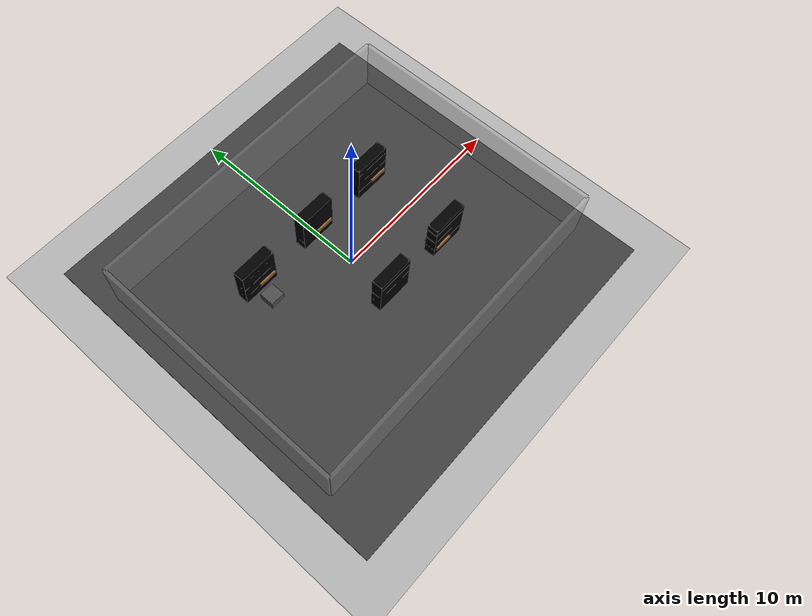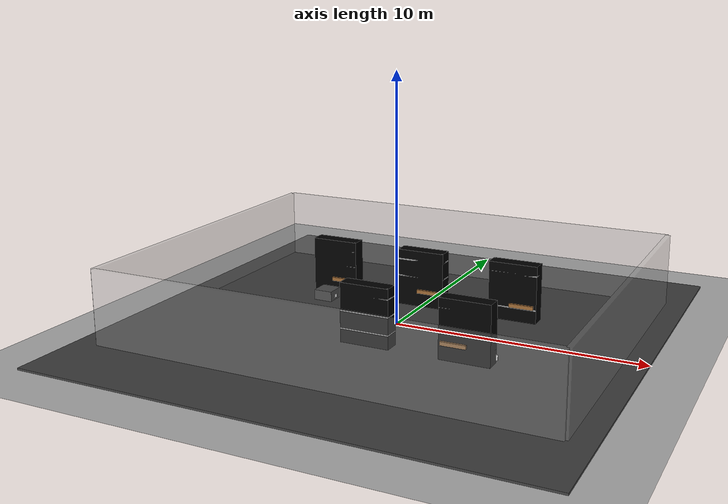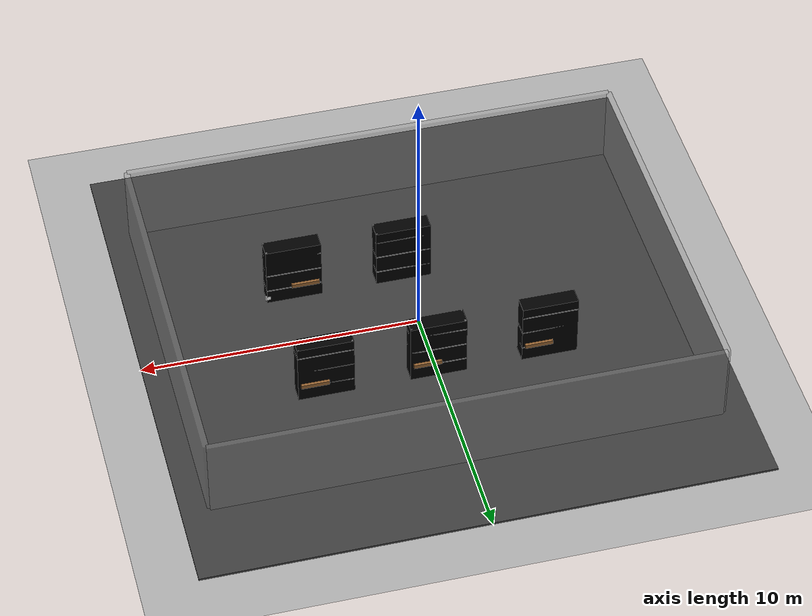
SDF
<?xml version="1.0" ?>
<sdf version="1.5">
  <world name="warehouse_world">

    <plugin
      filename="libignition-gazebo-physics-system.so"
      name="ignition::gazebo::systems::Physics">
    </plugin>

    <plugin
      filename="libignition-gazebo-sensors-system.so"
      name="ignition::gazebo::systems::Sensors">
      <render_engine>ogre2</render_engine>
    </plugin>

    <plugin
      filename="libignition-gazebo-scene-broadcaster-system.so"
      name="ignition::gazebo::systems::SceneBroadcaster">
    </plugin>

    <plugin
      filename="libignition-gazebo-user-commands-system.so"
      name="ignition::gazebo::systems::UserCommands">
    </plugin>

    <!-- Global light source -->
    <light name="sun" type="directional">
      <cast_shadows>false</cast_shadows>
      <pose>0 0 10 0 0 0</pose>
      <diffuse>1 1 1 1</diffuse>
      <specular>0.1 0.1 0.1 1</specular>
      <direction>-0.5 0.1 -1</direction>
    </light>

    <light name="soft_sun" type="directional">
      <pose>0 0 10 0 0 0</pose>

      <diffuse>0.9 0.9 0.9 1</diffuse>
      <specular>0.2 0.2 0.2 1</specular>

      <direction>-0.3 -0.2 -1</direction>

      <cast_shadows>false</cast_shadows>
    </light>

    <!-- SCENE (illuminazione globale) -->
    <scene>
      <ambient>0.45 0.45 0.45 1</ambient>
      <background>0.05 0.05 0.05 1</background>
    </scene>

    <model name="ground_plane">
      <static>true</static>
      <link name="link">
        <collision name="collision">
          <geometry>
            <plane>
              <normal>0 0 1</normal>
              <size>1000 1000</size>
            </plane>
          </geometry>
        </collision>
        <visual name="visual">
          <geometry>
            <plane>
              <normal>0 0 1</normal>
              <size>1000 1000</size>
            </plane>
          </geometry>
          <material>
            <ambient>0.7 0.7 0.7 1</ambient>
            <diffuse>0.7 0.7 0.7 1</diffuse>
          </material>
        </visual>
      </link>
    </model>

    <model name="asphalt_plane">
      <static>true</static>

      <link name="link">
        <collision name="collision">
          <geometry>
            <box>
              <size>20 20 0.1</size>
            </box>
          </geometry>
        </collision>

        <visual name="visual">
          <cast_shadows>false</cast_shadows>
          <geometry>
            <box>
              <size>20 20 0.1</size>
            </box>
          </geometry>

          <material>
            <ambient>0.18 0.18 0.18 1</ambient>
            <diffuse>0.25 0.25 0.25 1</diffuse>
            <specular>0.02 0.02 0.02 1</specular>
          </material>
        </visual>
      </link>
    </model>

    <!-- Only one ROS interface plugin is required per world, as any other plugin can connect a Gazebo
         topic to a ROS topic (or vise versa). -->

    <physics name='default_physics' default='0' type='ode'>
      <gravity>0 0 -9.8066</gravity>
      <ode>
        <solver>
          <type>quick</type>
          <iters>10</iters>
          <sor>1.3</sor>
          <use_dynamic_moi_rescaling>0</use_dynamic_moi_rescaling>
        </solver>
        <constraints>
          <cfm>0</cfm>
          <erp>0.2</erp>
          <contact_max_correcting_vel>100</contact_max_correcting_vel>
          <contact_surface_layer>0.001</contact_surface_layer>
        </constraints>
      </ode>
      <max_step_size>0.005</max_step_size>
      <real_time_factor>1</real_time_factor>
      <real_time_update_rate>250</real_time_update_rate>
      <magnetic_field>6e-06 2.3e-05 -4.2e-05</magnetic_field>
    </physics>

    <light name="light_shelf_L1" type="spot">
      <pose>0 2.5 3.8 0 0 0</pose>

      <diffuse>1 1 1 1</diffuse>
      <specular>0.4 0.4 0.4 1</specular>

      <attenuation>
        <range>9</range>
        <constant>0.2</constant>
        <linear>0.01</linear>
        <quadratic>0.002</quadratic>
      </attenuation>

      <spot>
        <inner_angle>1.0</inner_angle>
        <outer_angle>1.6</outer_angle>
        <falloff>0.8</falloff>
      </spot>

      <direction>0 0 -1</direction>
      <cast_shadows>false</cast_shadows>
    </light>

    <light name="light_shelf_L2" type="spot">
      <pose>4 2.5 3.8 0 0 0</pose>

      <diffuse>1 1 1 1</diffuse>
      <specular>0.4 0.4 0.4 1</specular>

      <attenuation>
        <range>9</range>
        <constant>0.2</constant>
        <linear>0.01</linear>
        <quadratic>0.002</quadratic>
      </attenuation>

      <spot>
        <inner_angle>1.0</inner_angle>
        <outer_angle>1.6</outer_angle>
        <falloff>0.8</falloff>
      </spot>

      <direction>0 0 -1</direction>
      <cast_shadows>false</cast_shadows>
    </light>

    <light name="light_shelf_L3" type="spot">
      <pose>-4 2.5 3.8 0 0 0</pose>

      <diffuse>1 1 1 1</diffuse>
      <specular>0.4 0.4 0.4 1</specular>

      <attenuation>
        <range>9</range>
        <constant>0.2</constant>
        <linear>0.01</linear>
        <quadratic>0.002</quadratic>
      </attenuation>

      <spot>
        <inner_angle>1.0</inner_angle>
        <outer_angle>1.6</outer_angle>
        <falloff>0.8</falloff>
      </spot>

      <direction>0 0 -1</direction>
      <cast_shadows>false</cast_shadows>
    </light>

    <light name="light_shelf_R1" type="spot">
      <pose>0 -2.5 3.8 0 0 0</pose>

      <diffuse>1 1 1 1</diffuse>
      <specular>0.4 0.4 0.4 1</specular>

      <attenuation>
        <range>9</range>
        <constant>0.2</constant>
        <linear>0.01</linear>
        <quadratic>0.002</quadratic>
      </attenuation>

      <spot>
        <inner_angle>1.0</inner_angle>
        <outer_angle>1.6</outer_angle>
        <falloff>0.8</falloff>
      </spot>

      <direction>0 0 -1</direction>
      <cast_shadows>false</cast_shadows>
    </light>

    <light name="light_shelf_R2" type="spot">
      <pose>4 -2.5 3.8 0 0 0</pose>

      <diffuse>1 1 1 1</diffuse>
      <specular>0.4 0.4 0.4 1</specular>

      <attenuation>
        <range>9</range>
        <constant>0.2</constant>
        <linear>0.01</linear>
        <quadratic>0.002</quadratic>
      </attenuation>

      <spot>
        <inner_angle>1.0</inner_angle>
        <outer_angle>1.6</outer_angle>
        <falloff>0.8</falloff>
      </spot>

      <direction>0 0 -1</direction>
      <cast_shadows>false</cast_shadows>
    </light>

    <light name="light_shelf_R3" type="spot">
      <pose>-4 -2.5 3.8 0 0 0</pose>

      <diffuse>1 1 1 1</diffuse>
      <specular>0.4 0.4 0.4 1</specular>

      <attenuation>
        <range>9</range>
        <constant>0.2</constant>
        <linear>0.01</linear>
        <quadratic>0.002</quadratic>
      </attenuation>

      <spot>
        <inner_angle>1.0</inner_angle>
        <outer_angle>1.6</outer_angle>
        <falloff>0.8</falloff>
      </spot>

      <direction>0 0 -1</direction>
      <cast_shadows>false</cast_shadows>
    </light>

    <model name="warehouse_shelf_loaded_L1">
      <static>true</static>
      <pose>0 2.5 0 0 0 0</pose>

      <!-- LINK UNICO -->
      <link name="shelf_link">

        <!-- COLLISIONE UNICA (volume pieno) -->
        <collision name="collision">
          <pose>0 0 1.2 0 0 0</pose>
          <geometry>
            <box>
              <size>2.0 0.6 2.4</size>
            </box>
          </geometry>
        </collision>

        <!-- VISUAL ROOT INVISIBILE -->
        <visual name="root_visual">
          <pose>0 0 1.2 0 0 0</pose>
          <geometry>
            <box>
              <size>2.0 0.6 2.4</size>
            </box>
          </geometry>
          <material>
            <ambient>0 0 0 0</ambient>
            <diffuse>0 0 0 0</diffuse>
          </material>
        </visual>

        <!-- GAMBE -->
        <visual name="leg_fl">
          <pose>0.95 0.25 1.2 0 0 0</pose>
          <geometry><box><size>0.05 0.05 2.4</size></box></geometry>
        </visual>

        <visual name="leg_fr">
          <pose>0.95 -0.25 1.2 0 0 0</pose>
          <geometry><box><size>0.05 0.05 2.4</size></box></geometry>
        </visual>

        <visual name="leg_bl">
          <pose>-0.95 0.25 1.2 0 0 0</pose>
          <geometry><box><size>0.05 0.05 2.4</size></box></geometry>
        </visual>

        <visual name="leg_br">
          <pose>-0.95 -0.25 1.2 0 0 0</pose>
          <geometry><box><size>0.05 0.05 2.4</size></box></geometry>
        </visual>

        <!-- RIPIANI -->
        <visual name="shelf_low">
          <pose>0 0 0.6 0 0 0</pose>
          <geometry><box><size>2.0 0.6 0.05</size></box></geometry>
        </visual>

        <visual name="shelf_mid">
          <pose>0 0 1.3 0 0 0</pose>
          <geometry><box><size>2.0 0.6 0.05</size></box></geometry>
        </visual>

        <visual name="shelf_top">
          <pose>0 0 2.0 0 0 0</pose>
          <geometry><box><size>2.0 0.6 0.05</size></box></geometry>
        </visual>

        <!-- PACCO CENTRALE 1 (marrone) -->
        <visual name="box_mid_1">
          <pose>0.3 0 1.48 0 0 0</pose>
          <geometry><box><size>0.4 0.3 0.3</size></box></geometry>
          <material>
            <ambient>0.7 0.5 0.3 1</ambient>
            <diffuse>0.7 0.5 0.3 1</diffuse>
          </material>
        </visual>

        <!-- PACCO CENTRALE 2 (blu) -->
        <visual name="box_mid_2">
          <pose>-0.3 0 1.48 0 0 0</pose>
          <geometry><box><size>0.35 0.35 0.25</size></box></geometry>
          <material>
            <ambient>0.7 0.5 0.3 1</ambient>
            <diffuse>0.7 0.5 0.3 1</diffuse>
          </material>
        </visual>

        <!-- PACCO RIPIANO BASSO -->
        <visual name="box_low">
          <pose>-0.4 0 0.78 0 0 0</pose>
          <geometry><box><size>0.4 0.3 0.3</size></box></geometry>
          <material>
            <ambient>0.7 0.5 0.3 1</ambient>
            <diffuse>0.7 0.5 0.3 1</diffuse>
          </material>
        </visual>

        <!-- PALLET FINTO (SOLO VISUAL) -->
        <visual name="pallet_low">
          <pose>0.4 0 0.705 0 0 0</pose>
          <geometry><box><size>1.0 0.8 0.15</size></box></geometry>
          <material>
            <ambient>0.6 0.4 0.2 1</ambient>
            <diffuse>0.6 0.4 0.2 1</diffuse>
          </material>
        </visual>

      </link>
    </model>

    <model name="warehouse_shelf_loaded_L2">
      <static>true</static>
      <pose>4 2.5 0 0 0 0</pose>

      <!-- LINK UNICO -->
      <link name="shelf_link">

        <!-- COLLISIONE UNICA (volume pieno) -->
        <collision name="collision">
          <pose>0 0 1.2 0 0 0</pose>
          <geometry>
            <box>
              <size>2.0 0.6 2.4</size>
            </box>
          </geometry>
        </collision>

        <!-- VISUAL ROOT INVISIBILE -->
        <visual name="root_visual">
          <pose>0 0 1.2 0 0 0</pose>
          <geometry>
            <box>
              <size>2.0 0.6 2.4</size>
            </box>
          </geometry>
          <material>
            <ambient>0 0 0 0</ambient>
            <diffuse>0 0 0 0</diffuse>
          </material>
        </visual>

        <!-- GAMBE -->
        <visual name="leg_fl">
          <pose>0.95 0.25 1.2 0 0 0</pose>
          <geometry><box><size>0.05 0.05 2.4</size></box></geometry>
        </visual>

        <visual name="leg_fr">
          <pose>0.95 -0.25 1.2 0 0 0</pose>
          <geometry><box><size>0.05 0.05 2.4</size></box></geometry>
        </visual>

        <visual name="leg_bl">
          <pose>-0.95 0.25 1.2 0 0 0</pose>
          <geometry><box><size>0.05 0.05 2.4</size></box></geometry>
        </visual>

        <visual name="leg_br">
          <pose>-0.95 -0.25 1.2 0 0 0</pose>
          <geometry><box><size>0.05 0.05 2.4</size></box></geometry>
        </visual>

        <!-- RIPIANI -->
        <visual name="shelf_low">
          <pose>0 0 0.6 0 0 0</pose>
          <geometry><box><size>2.0 0.6 0.05</size></box></geometry>
        </visual>

        <visual name="shelf_mid">
          <pose>0 0 1.3 0 0 0</pose>
          <geometry><box><size>2.0 0.6 0.05</size></box></geometry>
        </visual>

        <visual name="shelf_top">
          <pose>0 0 2.0 0 0 0</pose>
          <geometry><box><size>2.0 0.6 0.05</size></box></geometry>
        </visual>

        <!-- PACCO CENTRALE 1 (marrone) -->

        <!-- PACCO CENTRALE 2  -->
        <visual name="box_mid_2">
          <pose>-0.3 0 1.48 0 0 0</pose>
          <geometry><box><size>0.35 0.35 0.25</size></box></geometry>
          <material>
            <ambient>0.7 0.5 0.3 1</ambient>
            <diffuse>0.7 0.5 0.3 1</diffuse>
          </material>
        </visual>

        <!-- PACCO RIPIANO BASSO -->
        <visual name="box_low">
          <pose>-0.4 0 0.78 0 0 0</pose>
          <geometry><box><size>0.4 0.3 0.3</size></box></geometry>
          <material>
            <ambient>0.7 0.5 0.3 1</ambient>
            <diffuse>0.7 0.5 0.3 1</diffuse>
          </material>
        </visual>

        <!-- PALLET FINTO (SOLO VISUAL) -->
        <visual name="pallet_low">
          <pose>0.4 0 0.705 0 0 0</pose>
          <geometry><box><size>1.0 0.8 0.15</size></box></geometry>
          <material>
            <ambient>0.6 0.4 0.2 1</ambient>
            <diffuse>0.6 0.4 0.2 1</diffuse>
          </material>
        </visual>

      </link>
    </model>

    <model name="warehouse_shelf_loaded_L3">
      <static>true</static>
      <pose>-4 2.5 0 0 0 0</pose>

      <!-- LINK UNICO -->
      <link name="shelf_link">

        <!-- COLLISIONE UNICA (volume pieno) -->
        <collision name="collision">
          <pose>0 0 0.4 0 0 0</pose>
          <geometry>
            <box>
              <size>2.0 0.6 0.8</size>
            </box>
          </geometry>
        </collision>

        <collision name="invisible_support">
           <pose>0 -0.15 1.28 0 0 0</pose>
           <geometry>
             <box>
               <size>0.15 0.15 0.02</size>
             </box>
           </geometry>
           <surface>
              <friction>
                <ode>
                  <mu>100.0</mu>
                  <mu2>100.0</mu2>
                </ode>
              </friction>
           </surface>
        </collision>

        <!-- VISUAL ROOT INVISIBILE -->
        <visual name="root_visual">
          <pose>0 0 1.2 0 0 0</pose>
          <geometry>
            <box>
              <size>2.0 0.6 2.4</size>
            </box>
          </geometry>
          <material>
            <ambient>0 0 0 0</ambient>
            <diffuse>0 0 0 0</diffuse>
          </material>
        </visual>

        <!-- GAMBE -->
        <visual name="leg_fl">
          <pose>0.95 0.25 1.2 0 0 0</pose>
          <geometry><box><size>0.05 0.05 2.4</size></box></geometry>
        </visual>

        <visual name="leg_fr">
          <pose>0.95 -0.25 1.2 0 0 0</pose>
          <geometry><box><size>0.05 0.05 2.4</size></box></geometry>
        </visual>

        <visual name="leg_bl">
          <pose>-0.95 0.25 1.2 0 0 0</pose>
          <geometry><box><size>0.05 0.05 2.4</size></box></geometry>
        </visual>

        <visual name="leg_br">
          <pose>-0.95 -0.25 1.2 0 0 0</pose>
          <geometry><box><size>0.05 0.05 2.4</size></box></geometry>
        </visual>

        <!-- RIPIANI -->
        <visual name="shelf_low">
          <pose>0 0 0.6 0 0 0</pose>
          <geometry><box><size>2.0 0.6 0.05</size></box></geometry>
        </visual>

        <visual name="shelf_mid">
          <pose>0 0 1.3 0 0 0</pose>
          <geometry><box><size>2.0 0.6 0.05</size></box></geometry>
        </visual>

        <visual name="shelf_top">
          <pose>0 0 2.0 0 0 0</pose>
          <geometry><box><size>2.0 0.6 0.05</size></box></geometry>
        </visual>

        <!-- PACCO RIPIANO ALTO -->
        <visual name="box_top_1">
          <pose>0.3 0 2.17 0 0 0</pose>
          <geometry>
            <box>
              <size>0.4 0.3 0.3</size>
            </box>
          </geometry>
          <material>
            <ambient>0.7 0.5 0.3 1</ambient>
            <diffuse>0.7 0.5 0.3 1</diffuse>
          </material>
        </visual>

        <!-- PACCO CENTRALE 1 (marrone) -->

        <!-- PACCO CENTRALE 2  BLUE -->

        <!-- PACCO RIPIANO BASSO -->

        <!-- PALLET FINTO (SOLO VISUAL) -->
        <visual name="pallet_low">
          <pose>0.4 0 0.705 0 0 0</pose>
          <geometry><box><size>1.0 0.8 0.15</size></box></geometry>
          <material>
            <ambient>0.6 0.4 0.2 1</ambient>
            <diffuse>0.6 0.4 0.2 1</diffuse>
          </material>
        </visual>

      </link>
    </model>

    <model name="blue_box_target">
      <pose>-4.0 2.35 1.38 0 0 0</pose>
      <static>false</static> <link name="link">
        <inertial>
          <mass>0.00001</mass>
          <inertia>
            <ixx>0.004</ixx><ixy>0</ixy><ixz>0</ixz>
            <iyy>0.004</iyy><iyz>0</iyz><izz>0.004</izz>
          </inertia>
        </inertial>

        <collision name="collision">
          <geometry><box><size>0.20 0.20 0.20</size></box></geometry>
          <surface>
            <friction>
                <ode><mu>100.0</mu><mu2>100.0</mu2></ode>
            </friction>
            <contact>
               <ode><kp>10000000.0</kp><kd>1.0</kd></ode>
            </contact>
          </surface>
        </collision>

        <visual name="visual">
          <geometry><box><size>0.20 0.20 0.20</size></box></geometry>
          <material>
            <ambient>0.3 0.5 0.7 1</ambient>
            <diffuse>0.3 0.5 0.7 1</diffuse>
          </material>
        </visual>
      </link>
    </model>

    <model name="warehouse_shelf_loaded_R1">
      <static>true</static>
      <pose>0 -2.5 0 0 0 3.1416</pose>

      <!-- LINK UNICO -->
      <link name="shelf_link">

        <!-- COLLISIONE UNICA (volume pieno) -->
        <collision name="collision">
          <pose>0 0 1.2 0 0 0</pose>
          <geometry>
            <box>
              <size>2.0 0.6 2.4</size>
            </box>
          </geometry>
        </collision>

        <!-- VISUAL ROOT INVISIBILE -->
        <visual name="root_visual">
          <pose>0 0 1.2 0 0 0</pose>
          <geometry>
            <box>
              <size>2.0 0.6 2.4</size>
            </box>
          </geometry>
          <material>
            <ambient>0 0 0 0</ambient>
            <diffuse>0 0 0 0</diffuse>
          </material>
        </visual>

        <!-- GAMBE -->
        <visual name="leg_fl">
          <pose>0.95 0.25 1.2 0 0 0</pose>
          <geometry><box><size>0.05 0.05 2.4</size></box></geometry>
        </visual>

        <visual name="leg_fr">
          <pose>0.95 -0.25 1.2 0 0 0</pose>
          <geometry><box><size>0.05 0.05 2.4</size></box></geometry>
        </visual>

        <visual name="leg_bl">
          <pose>-0.95 0.25 1.2 0 0 0</pose>
          <geometry><box><size>0.05 0.05 2.4</size></box></geometry>
        </visual>

        <visual name="leg_br">
          <pose>-0.95 -0.25 1.2 0 0 0</pose>
          <geometry><box><size>0.05 0.05 2.4</size></box></geometry>
        </visual>

        <!-- RIPIANI -->
        <visual name="shelf_low">
          <pose>0 0 0.6 0 0 0</pose>
          <geometry><box><size>2.0 0.6 0.05</size></box></geometry>
        </visual>

        <visual name="shelf_mid">
          <pose>0 0 1.3 0 0 0</pose>
          <geometry><box><size>2.0 0.6 0.05</size></box></geometry>
        </visual>

        <visual name="shelf_top">
          <pose>0 0 2.0 0 0 0</pose>
          <geometry><box><size>2.0 0.6 0.05</size></box></geometry>
        </visual>

        <!-- PACCO CENTRALE 1 (marrone) -->
        <visual name="box_mid_1">
          <pose>0.3 0 1.48 0 0 0</pose>
          <geometry><box><size>0.4 0.3 0.3</size></box></geometry>
          <material>
            <ambient>0.7 0.5 0.3 1</ambient>
            <diffuse>0.7 0.5 0.3 1</diffuse>
          </material>
        </visual>

        <!-- PACCO CENTRALE 2  -->
        <visual name="box_mid_2">
          <pose>-0.3 0 1.48 0 0 0</pose>
          <geometry><box><size>0.35 0.35 0.25</size></box></geometry>
          <material>
            <ambient>0.7 0.5 0.3 1</ambient>
            <diffuse>0.7 0.5 0.3 1</diffuse>
          </material>
        </visual>

        <!-- PACCO RIPIANO BASSO -->
        <visual name="box_low">
          <pose>-0.4 0 0.78 0 0 0</pose>
          <geometry><box><size>0.4 0.3 0.3</size></box></geometry>
          <material>
            <ambient>0.7 0.5 0.3 1</ambient>
            <diffuse>0.7 0.5 0.3 1</diffuse>
          </material>
        </visual>

        <!-- PALLET FINTO (SOLO VISUAL) -->

      </link>
    </model>

    <model name="warehouse_shelf_loaded_R2">
      <static>true</static>
      <pose>4 -2.5 0 0 0 3.1416</pose>

      <!-- LINK UNICO -->
      <link name="shelf_link">

        <!-- COLLISIONE UNICA (volume pieno) -->
        <collision name="collision">
          <pose>0 0 0.4 0 0 0</pose> <geometry>
            <box>
              <size>2.0 0.6 0.8</size> </box>
          </geometry>
        </collision>

        <collision name="invisible_support">
           <pose>0 -0.15 1.28 0 0 0</pose>
           <geometry>
             <box>
               <size>0.15 0.15 0.02</size>
             </box>
           </geometry>
           <surface>
              <friction>
                <ode>
                  <mu>100.0</mu>
                  <mu2>100.0</mu2>
                </ode>
              </friction>
           </surface>
        </collision>

        <visual name="root_visual">
          <pose>0 0 1.2 0 0 0</pose>
          <geometry>
            <box>
              <size>2.0 0.6 2.4</size>
            </box>
          </geometry>
          <material>
            <ambient>0 0 0 0</ambient>
            <diffuse>0 0 0 0</diffuse>
          </material>
        </visual>

        <!-- GAMBE -->
        <visual name="leg_fl">
          <pose>0.95 0.25 1.2 0 0 0</pose>
          <geometry><box><size>0.05 0.05 2.4</size></box></geometry>
        </visual>

        <visual name="leg_fr">
          <pose>0.95 -0.25 1.2 0 0 0</pose>
          <geometry><box><size>0.05 0.05 2.4</size></box></geometry>
        </visual>

        <visual name="leg_bl">
          <pose>-0.95 0.25 1.2 0 0 0</pose>
          <geometry><box><size>0.05 0.05 2.4</size></box></geometry>
        </visual>

        <visual name="leg_br">
          <pose>-0.95 -0.25 1.2 0 0 0</pose>
          <geometry><box><size>0.05 0.05 2.4</size></box></geometry>
        </visual>

        <!-- RIPIANI -->
        <visual name="shelf_low">
          <pose>0 0 0.6 0 0 0</pose>
          <geometry><box><size>2.0 0.6 0.05</size></box></geometry>
        </visual>

        <visual name="shelf_mid">
          <pose>0 0 1.3 0 0 0</pose>
          <geometry><box><size>2.0 0.6 0.05</size></box></geometry>
        </visual>

        <visual name="shelf_top">
          <pose>0 0 2.0 0 0 0</pose>
          <geometry><box><size>2.0 0.6 0.05</size></box></geometry>
        </visual>

        <!-- PACCO CENTRALE 1 (marrone) -->
        <visual name="box_mid_1">
          <pose>0.62 0 1.48 0 0 0</pose>
          <geometry><box><size>0.4 0.3 0.3</size></box></geometry>
          <material>
            <ambient>0.7 0.5 0.3 1</ambient>
            <diffuse>0.7 0.5 0.3 1</diffuse>
          </material>
        </visual>

        <!-- PACCO CENTRALE 2  -->

        <!-- PACCO RIPIANO BASSO -->
        <visual name="box_low">
          <pose>-0.4 0 0.78 0 0 0</pose>
          <geometry><box><size>0.4 0.3 0.3</size></box></geometry>
          <material>
            <ambient>0.7 0.5 0.3 1</ambient>
            <diffuse>0.7 0.5 0.3 1</diffuse>
          </material>
        </visual>

        <!-- PALLET FINTO (SOLO VISUAL) -->
        <visual name="pallet_low">
          <pose>0.4 0 0.705 0 0 0</pose>
          <geometry><box><size>1.0 0.8 0.15</size></box></geometry>
          <material>
            <ambient>0.6 0.4 0.2 1</ambient>
            <diffuse>0.6 0.4 0.2 1</diffuse>
          </material>
        </visual>

      </link>
    </model>

    <model name="iiwa_platform">
      <static>true</static>

      <pose>-4.0 1.5 0.225 0 0 0</pose>

      <link name="platform_link">
        <collision name="collision">
          <geometry>
            <box>
              <size>0.8 0.8 0.5</size>
            </box>
          </geometry>
        </collision>

        <visual name="visual">
          <geometry>
            <box>
              <size>0.8 0.8 0.5</size>
            </box>
          </geometry>
          <material>
            <ambient>0.3 0.3 0.3 1</ambient>
            <diffuse>0.3 0.3 0.3 1</diffuse>
          </material>
        </visual>
      </link>
    </model>

    <include>
      <uri>model://marker</uri>
      <name>aruco_marker_iiwa_platform</name>
      <pose>-3.59 1.5 0.2 0 1.57 3.14</pose>
    </include>

    <include>
      <uri>model://marker</uri>
      <name>aruco_marker_shelf_R2</name>
      <pose>4.95 -2.19 0.25 0 1.57 -1.57</pose>
    </include>
    <model name="aruco_background_panel">
      <static>true</static>
      <pose>4.95 -2.21 0.25 0 1.57 -1.57</pose>
      <link name="link">
        <visual name="visual">
          <geometry>
            <box>
              <size>0.22 0.22 0.01</size>
            </box>
          </geometry>
          <material>
            <ambient>1 1 1 1</ambient>
            <diffuse>1 1 1 1</diffuse>
            <specular>0 0 0 1</specular> </material>
        </visual>
      </link>
    </model>

    <model name="wall_left">
      <static>true</static>
      <pose>-9 0 1.5 0 0 0</pose>
      <link name="link">
        <collision name="collision">
          <geometry>
            <box><size>0.2 14 3</size></box>
          </geometry>
        </collision>
        <visual name="visual">
          <geometry>
            <box><size>0.2 14 3</size></box>
          </geometry>
          <material>
            <ambient>0.6 0.6 0.6 0.35</ambient>
            <diffuse>0.6 0.6 0.6 0.35</diffuse>
            <specular>0.1 0.1 0.1 0.35</specular>
          </material>
        </visual>
      </link>
    </model>

    <model name="wall_right">
      <static>true</static>
      <pose>9 0 1.5 0 0 0</pose>
      <link name="link">
        <collision name="collision">
          <geometry>
            <box><size>0.2 14 3</size></box>
          </geometry>
        </collision>
        <visual name="visual">
          <geometry>
            <box><size>0.2 14 3</size></box>
          </geometry>
          <material>
            <ambient>0.6 0.6 0.6 0.35</ambient>
            <diffuse>0.6 0.6 0.6 0.35</diffuse>
            <specular>0.1 0.1 0.1 0.35</specular>
          </material>
        </visual>
      </link>
    </model>

    <model name="wall_back">
      <static>true</static>
      <pose>0 7 1.5 0 0 0</pose>
      <link name="link">
        <collision name="collision">
          <geometry>
            <box><size>18 0.2 3</size></box>
          </geometry>
        </collision>
        <visual name="visual">
          <geometry>
            <box><size>18 0.2 3</size></box>
          </geometry>
          <material>
            <ambient>0.6 0.6 0.6 0.35</ambient>
            <diffuse>0.6 0.6 0.6 0.35</diffuse>
            <specular>0.1 0.1 0.1 0.35</specular>
          </material>
        </visual>
      </link>
    </model>

    <model name="wall_front">
      <static>true</static>
      <pose>0 -7 1.5 0 0 0</pose>
      <link name="link">
        <collision name="collision">
          <geometry>
            <box><size>18 0.2 3</size></box>
          </geometry>
        </collision>
        <visual name="visual">
          <geometry>
            <box><size>18 0.2 3</size></box>
          </geometry>
          <material>
            <ambient>0.6 0.6 0.6 0.35</ambient>
            <diffuse>0.6 0.6 0.6 0.35</diffuse>
            <specular>0.1 0.1 0.1 0.35</specular>
          </material>
          <cast_shadows>false</cast_shadows>
        </visual>
      </link>
    </model>

  </world>
</sdf>

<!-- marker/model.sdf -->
<sdf version="1.9">
  <model name="arucotag">
    <static>true</static>

    <link name="base">
      <pose>0 0 0.002 0 0 0</pose> <visual name="tag_visual">
        <geometry>
          <box>
            <size>0.15 0.15 0.001</size> </box>
        </geometry>
        <material>
          <ambient>1 1 1 1</ambient>
          <diffuse>1 1 1 1</diffuse>
          <pbr>
            <metal>
              <albedo_map>model://marker/ar_tag_0.png</albedo_map>
            </metal>
          </pbr>
        </material>
      </visual>
    </link>
  </model>
</sdf>
